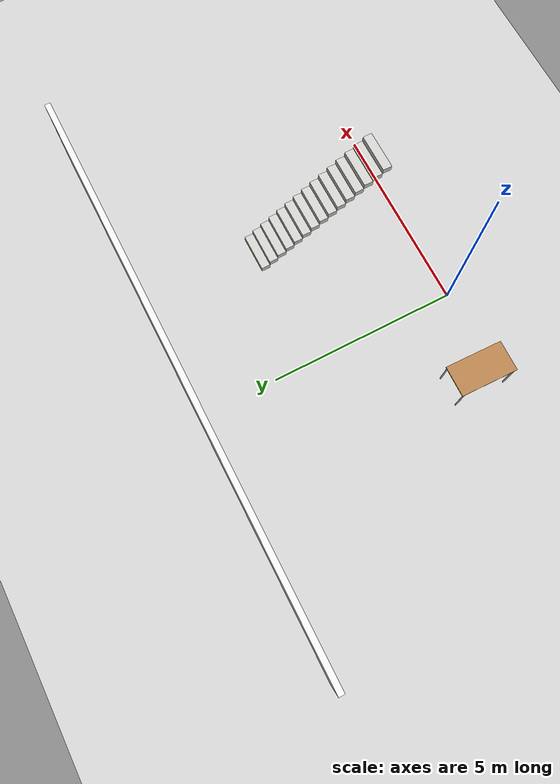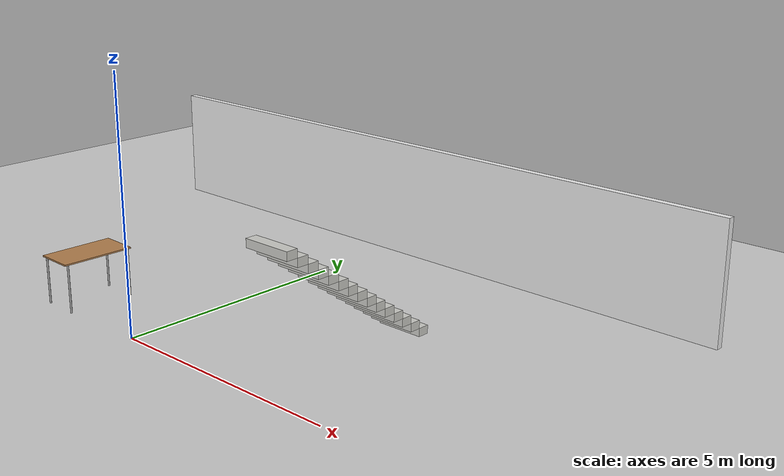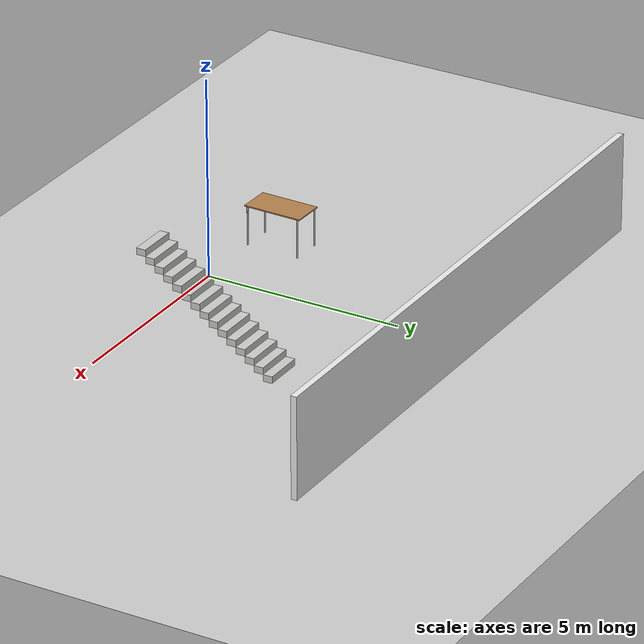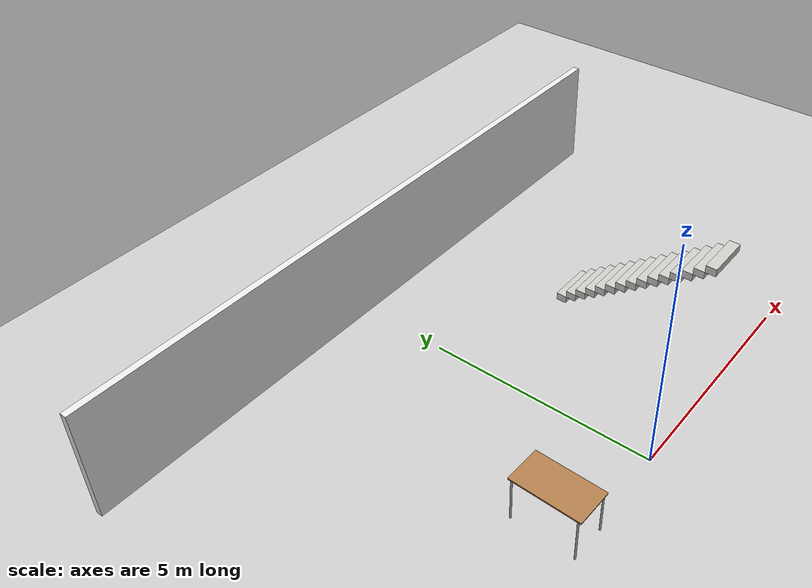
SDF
<sdf version="1.6">
 <world name="default">
  <model name="ground_plane">
   <static>1</static>
   <link name="link">
    <collision name="collision">
     <geometry><plane><normal>0 0 1</normal><size>100 100</size></plane></geometry>
     <surface>
      <contact><collide_bitmask>65535</collide_bitmask></contact>
      <friction><ode><mu>100</mu><mu2>50</mu2></ode></friction>
     </surface>
    </collision>
    <visual name="visual">
     <cast_shadows>0</cast_shadows>
     <geometry><plane><normal>0 0 1</normal><size>100 100</size></plane></geometry>
     <material>
      <script><uri>file://media/materials/scripts/gazebo.material</uri><name>Gazebo/Grey</name></script>
     </material>
    </visual>
   </link>
  </model>
  <model name="table_0">
   <static>1</static>
   <link name="link">
    <collision name="surface">
     <pose>0 0 1 0 -0 0</pose>
     <geometry><box><size>1.5 0.8 0.03</size></box></geometry>
     <surface><friction><ode><mu>0.6</mu><mu2>0.6</mu2></ode></friction></surface>
    </collision>
    <visual name="visual1">
     <pose>0 0 1 0 -0 0</pose>
     <geometry><box><size>1.5 0.8 0.03</size></box></geometry>
     <material>
      <script><uri>file://media/materials/scripts/gazebo.material</uri><name>Gazebo/Wood</name></script>
     </material>
    </visual>
    <collision name="front_left_leg">
     <pose>0.68 0.38 0.5 0 -0 0</pose>
     <geometry><cylinder><radius>0.02</radius><length>1</length></cylinder></geometry>
    </collision>
    <visual name="front_left_leg">
     <pose>0.68 0.38 0.5 0 -0 0</pose>
     <geometry><cylinder><radius>0.02</radius><length>1</length></cylinder></geometry>
     <material>
      <script><uri>file://media/materials/scripts/gazebo.material</uri><name>Gazebo/Grey</name></script>
     </material>
    </visual>
    <collision name="front_right_leg">
     <pose>0.68 -0.38 0.5 0 -0 0</pose>
     <geometry><cylinder><radius>0.02</radius><length>1</length></cylinder></geometry>
    </collision>
    <visual name="front_right_leg">
     <pose>0.68 -0.38 0.5 0 -0 0</pose>
     <geometry><cylinder><radius>0.02</radius><length>1</length></cylinder></geometry>
     <material>
      <script><uri>file://media/materials/scripts/gazebo.material</uri><name>Gazebo/Grey</name></script>
     </material>
    </visual>
    <collision name="back_right_leg">
     <pose>-0.68 -0.38 0.5 0 -0 0</pose>
     <geometry><cylinder><radius>0.02</radius><length>1</length></cylinder></geometry>
    </collision>
    <visual name="back_right_leg">
     <pose>-0.68 -0.38 0.5 0 -0 0</pose>
     <geometry><cylinder><radius>0.02</radius><length>1</length></cylinder></geometry>
     <material>
      <script><uri>file://media/materials/scripts/gazebo.material</uri><name>Gazebo/Grey</name></script>
     </material>
    </visual>
    <collision name="back_left_leg">
     <pose>-0.68 0.38 0.5 0 -0 0</pose>
     <geometry><cylinder><radius>0.02</radius><length>1</length></cylinder></geometry>
    </collision>
    <visual name="back_left_leg">
     <pose>-0.68 0.38 0.5 0 -0 0</pose>
     <geometry><cylinder><radius>0.02</radius><length>1</length></cylinder></geometry>
     <material>
      <script><uri>file://media/materials/scripts/gazebo.material</uri><name>Gazebo/Grey</name></script>
     </material>
    </visual>
   </link>
   <pose>-2.23339 0.613109 0 0 0 -1.59289</pose>
  </model>
  <model name="my_building_0">
   <link name="Stairs_0">
    <visual name="Stairs_0_Visual_0">
     <pose>1.21745 4.206 0.083333 0 -0 0</pose>
     <geometry><box><size>1 0.233333 0.166667</size></box></geometry>
     <material>
      <script><uri>file://media/materials/scripts/gazebo.material</uri><name>Gazebo/CeilingTiled</name></script>
      <ambient>1 1 1 1</ambient>
      <diffuse>1 1 1 1</diffuse>
      <specular>0 0 0 1</specular>
      <emissive>0 0 0 1</emissive>
      <shader type="pixel"/>
     </material>
     <meta><layer>0</layer></meta>
    </visual>
    <visual name="Stairs_0_Visual_1">
     <pose>1.21745 3.97267 0.25 0 -0 0</pose>
     <geometry><box><size>1 0.233333 0.166667</size></box></geometry>
     <material>
      <script><uri>file://media/materials/scripts/gazebo.material</uri><name>Gazebo/CeilingTiled</name></script>
      <ambient>1 1 1 1</ambient>
      <diffuse>1 1 1 1</diffuse>
      <specular>0 0 0 1</specular>
      <emissive>0 0 0 1</emissive>
      <shader type="pixel"/>
     </material>
     <meta><layer>0</layer></meta>
    </visual>
    <visual name="Stairs_0_Visual_2">
     <pose>1.21745 3.73934 0.416667 0 -0 0</pose>
     <geometry><box><size>1 0.233333 0.166667</size></box></geometry>
     <material>
      <script><uri>file://media/materials/scripts/gazebo.material</uri><name>Gazebo/CeilingTiled</name></script>
      <ambient>1 1 1 1</ambient>
      <diffuse>1 1 1 1</diffuse>
      <specular>0 0 0 1</specular>
      <emissive>0 0 0 1</emissive>
      <shader type="pixel"/>
     </material>
     <meta><layer>0</layer></meta>
    </visual>
    <visual name="Stairs_0_Visual_3">
     <pose>1.21745 3.506 0.583333 0 -0 0</pose>
     <geometry><box><size>1 0.233333 0.166667</size></box></geometry>
     <material>
      <script><uri>file://media/materials/scripts/gazebo.material</uri><name>Gazebo/CeilingTiled</name></script>
      <ambient>1 1 1 1</ambient>
      <diffuse>1 1 1 1</diffuse>
      <specular>0 0 0 1</specular>
      <emissive>0 0 0 1</emissive>
      <shader type="pixel"/>
     </material>
     <meta><layer>0</layer></meta>
    </visual>
    <visual name="Stairs_0_Visual_4">
     <pose>1.21745 3.27267 0.75 0 -0 0</pose>
     <geometry><box><size>1 0.233333 0.166667</size></box></geometry>
     <material>
      <script><uri>file://media/materials/scripts/gazebo.material</uri><name>Gazebo/CeilingTiled</name></script>
      <ambient>1 1 1 1</ambient>
      <diffuse>1 1 1 1</diffuse>
      <specular>0 0 0 1</specular>
      <emissive>0 0 0 1</emissive>
      <shader type="pixel"/>
     </material>
     <meta><layer>0</layer></meta>
    </visual>
    <visual name="Stairs_0_Visual_5">
     <pose>1.21745 3.03934 0.916667 0 -0 0</pose>
     <geometry><box><size>1 0.233333 0.166667</size></box></geometry>
     <material>
      <script><uri>file://media/materials/scripts/gazebo.material</uri><name>Gazebo/CeilingTiled</name></script>
      <ambient>1 1 1 1</ambient>
      <diffuse>1 1 1 1</diffuse>
      <specular>0 0 0 1</specular>
      <emissive>0 0 0 1</emissive>
      <shader type="pixel"/>
     </material>
     <meta><layer>0</layer></meta>
    </visual>
    <visual name="Stairs_0_Visual_6">
     <pose>1.21745 2.806 1.08333 0 -0 0</pose>
     <geometry><box><size>1 0.233333 0.166667</size></box></geometry>
     <material>
      <script><uri>file://media/materials/scripts/gazebo.material</uri><name>Gazebo/CeilingTiled</name></script>
      <ambient>1 1 1 1</ambient>
      <diffuse>1 1 1 1</diffuse>
      <specular>0 0 0 1</specular>
      <emissive>0 0 0 1</emissive>
      <shader type="pixel"/>
     </material>
     <meta><layer>0</layer></meta>
    </visual>
    <visual name="Stairs_0_Visual_7">
     <pose>1.21745 2.57267 1.25 0 -0 0</pose>
     <geometry><box><size>1 0.233333 0.166667</size></box></geometry>
     <material>
      <script><uri>file://media/materials/scripts/gazebo.material</uri><name>Gazebo/CeilingTiled</name></script>
      <ambient>1 1 1 1</ambient>
      <diffuse>1 1 1 1</diffuse>
      <specular>0 0 0 1</specular>
      <emissive>0 0 0 1</emissive>
      <shader type="pixel"/>
     </material>
     <meta><layer>0</layer></meta>
    </visual>
    <visual name="Stairs_0_Visual_8">
     <pose>1.21745 2.33934 1.41667 0 -0 0</pose>
     <geometry><box><size>1 0.233333 0.166667</size></box></geometry>
     <material>
      <script><uri>file://media/materials/scripts/gazebo.material</uri><name>Gazebo/CeilingTiled</name></script>
      <ambient>1 1 1 1</ambient>
      <diffuse>1 1 1 1</diffuse>
      <specular>0 0 0 1</specular>
      <emissive>0 0 0 1</emissive>
      <shader type="pixel"/>
     </material>
     <meta><layer>0</layer></meta>
    </visual>
    <visual name="Stairs_0_Visual_9">
     <pose>1.21745 2.106 1.58333 0 -0 0</pose>
     <geometry><box><size>1 0.233333 0.166667</size></box></geometry>
     <material>
      <script><uri>file://media/materials/scripts/gazebo.material</uri><name>Gazebo/CeilingTiled</name></script>
      <ambient>1 1 1 1</ambient>
      <diffuse>1 1 1 1</diffuse>
      <specular>0 0 0 1</specular>
      <emissive>0 0 0 1</emissive>
      <shader type="pixel"/>
     </material>
     <meta><layer>0</layer></meta>
    </visual>
    <visual name="Stairs_0_Visual_10">
     <pose>1.21745 1.87267 1.75 0 -0 0</pose>
     <geometry><box><size>1 0.233333 0.166667</size></box></geometry>
     <material>
      <script><uri>file://media/materials/scripts/gazebo.material</uri><name>Gazebo/CeilingTiled</name></script>
      <ambient>1 1 1 1</ambient>
      <diffuse>1 1 1 1</diffuse>
      <specular>0 0 0 1</specular>
      <emissive>0 0 0 1</emissive>
      <shader type="pixel"/>
     </material>
     <meta><layer>0</layer></meta>
    </visual>
    <visual name="Stairs_0_Visual_11">
     <pose>1.21745 1.63934 1.91667 0 -0 0</pose>
     <geometry><box><size>1 0.233333 0.166667</size></box></geometry>
     <material>
      <script><uri>file://media/materials/scripts/gazebo.material</uri><name>Gazebo/CeilingTiled</name></script>
      <ambient>1 1 1 1</ambient>
      <diffuse>1 1 1 1</diffuse>
      <specular>0 0 0 1</specular>
      <emissive>0 0 0 1</emissive>
      <shader type="pixel"/>
     </material>
     <meta><layer>0</layer></meta>
    </visual>
    <visual name="Stairs_0_Visual_12">
     <pose>1.21745 1.406 2.08333 0 -0 0</pose>
     <geometry><box><size>1 0.233333 0.166667</size></box></geometry>
     <material>
      <script><uri>file://media/materials/scripts/gazebo.material</uri><name>Gazebo/CeilingTiled</name></script>
      <ambient>1 1 1 1</ambient>
      <diffuse>1 1 1 1</diffuse>
      <specular>0 0 0 1</specular>
      <emissive>0 0 0 1</emissive>
      <shader type="pixel"/>
     </material>
     <meta><layer>0</layer></meta>
    </visual>
    <visual name="Stairs_0_Visual_13">
     <pose>1.21745 1.17267 2.25 0 -0 0</pose>
     <geometry><box><size>1 0.233333 0.166667</size></box></geometry>
     <material>
      <script><uri>file://media/materials/scripts/gazebo.material</uri><name>Gazebo/CeilingTiled</name></script>
      <ambient>1 1 1 1</ambient>
      <diffuse>1 1 1 1</diffuse>
      <specular>0 0 0 1</specular>
      <emissive>0 0 0 1</emissive>
      <shader type="pixel"/>
     </material>
     <meta><layer>0</layer></meta>
    </visual>
    <visual name="Stairs_0_Visual_14">
     <pose>1.21745 0.939336 2.41667 0 -0 0</pose>
     <geometry><box><size>1 0.233333 0.166667</size></box></geometry>
     <material>
      <script><uri>file://media/materials/scripts/gazebo.material</uri><name>Gazebo/CeilingTiled</name></script>
      <ambient>1 1 1 1</ambient>
      <diffuse>1 1 1 1</diffuse>
      <specular>0 0 0 1</specular>
      <emissive>0 0 0 1</emissive>
      <shader type="pixel"/>
     </material>
     <meta><layer>0</layer></meta>
    </visual>
    <collision name="Stairs_0_Collision_0">
     <pose>1.21745 4.206 0.083333 0 -0 0</pose>
     <geometry><box><size>1 0.233333 0.166667</size></box></geometry>
     <surface>
      <friction>
       <ode><mu>1</mu><mu2>1</mu2><fdir1>0 0 0</fdir1><slip1>0</slip1><slip2>0</slip2></ode>
       <torsional>
        <coefficient>1</coefficient>
        <patch_radius>0</patch_radius>
        <surface_radius>0</surface_radius>
        <use_patch_radius>1</use_patch_radius>
        <ode><slip>0</slip></ode>
       </torsional>
      </friction>
      <bounce><restitution_coefficient>0</restitution_coefficient><threshold>1e+06</threshold></bounce>
      <contact>
       <collide_without_contact>0</collide_without_contact>
       <collide_without_contact_bitmask>1</collide_without_contact_bitmask>
       <collide_bitmask>1</collide_bitmask>
       <ode>
        <soft_cfm>0</soft_cfm>
        <soft_erp>0.2</soft_erp>
        <kp>1e+13</kp>
        <kd>1</kd>
        <max_vel>0.01</max_vel>
        <min_depth>0</min_depth>
       </ode>
       <bullet>
        <split_impulse>1</split_impulse>
        <split_impulse_penetration_threshold>-0.01</split_impulse_penetration_threshold>
        <soft_cfm>0</soft_cfm>
        <soft_erp>0.2</soft_erp>
        <kp>1e+13</kp>
        <kd>1</kd>
       </bullet>
      </contact>
     </surface>
    </collision>
    <collision name="Stairs_0_Collision_3">
     <pose>1.21745 3.506 0.583333 0 -0 0</pose>
     <geometry><box><size>1 0.233333 0.166667</size></box></geometry>
     <surface>
      <friction>
       <ode><mu>1</mu><mu2>1</mu2><fdir1>0 0 0</fdir1><slip1>0</slip1><slip2>0</slip2></ode>
       <torsional>
        <coefficient>1</coefficient>
        <patch_radius>0</patch_radius>
        <surface_radius>0</surface_radius>
        <use_patch_radius>1</use_patch_radius>
        <ode><slip>0</slip></ode>
       </torsional>
      </friction>
      <bounce><restitution_coefficient>0</restitution_coefficient><threshold>1e+06</threshold></bounce>
      <contact>
       <collide_without_contact>0</collide_without_contact>
       <collide_without_contact_bitmask>1</collide_without_contact_bitmask>
       <collide_bitmask>1</collide_bitmask>
       <ode>
        <soft_cfm>0</soft_cfm>
        <soft_erp>0.2</soft_erp>
        <kp>1e+13</kp>
        <kd>1</kd>
        <max_vel>0.01</max_vel>
        <min_depth>0</min_depth>
       </ode>
       <bullet>
        <split_impulse>1</split_impulse>
        <split_impulse_penetration_threshold>-0.01</split_impulse_penetration_threshold>
        <soft_cfm>0</soft_cfm>
        <soft_erp>0.2</soft_erp>
        <kp>1e+13</kp>
        <kd>1</kd>
       </bullet>
      </contact>
     </surface>
    </collision>
    <collision name="Stairs_0_Collision_1">
     <pose>1.21745 3.97267 0.25 0 -0 0</pose>
     <geometry><box><size>1 0.233333 0.166667</size></box></geometry>
     <surface>
      <friction>
       <ode><mu>1</mu><mu2>1</mu2><fdir1>0 0 0</fdir1><slip1>0</slip1><slip2>0</slip2></ode>
       <torsional>
        <coefficient>1</coefficient>
        <patch_radius>0</patch_radius>
        <surface_radius>0</surface_radius>
        <use_patch_radius>1</use_patch_radius>
        <ode><slip>0</slip></ode>
       </torsional>
      </friction>
      <bounce><restitution_coefficient>0</restitution_coefficient><threshold>1e+06</threshold></bounce>
      <contact>
       <collide_without_contact>0</collide_without_contact>
       <collide_without_contact_bitmask>1</collide_without_contact_bitmask>
       <collide_bitmask>1</collide_bitmask>
       <ode>
        <soft_cfm>0</soft_cfm>
        <soft_erp>0.2</soft_erp>
        <kp>1e+13</kp>
        <kd>1</kd>
        <max_vel>0.01</max_vel>
        <min_depth>0</min_depth>
       </ode>
       <bullet>
        <split_impulse>1</split_impulse>
        <split_impulse_penetration_threshold>-0.01</split_impulse_penetration_threshold>
        <soft_cfm>0</soft_cfm>
        <soft_erp>0.2</soft_erp>
        <kp>1e+13</kp>
        <kd>1</kd>
       </bullet>
      </contact>
     </surface>
    </collision>
    <collision name="Stairs_0_Collision_4">
     <pose>1.21745 3.27267 0.75 0 -0 0</pose>
     <geometry><box><size>1 0.233333 0.166667</size></box></geometry>
     <surface>
      <friction>
       <ode><mu>1</mu><mu2>1</mu2><fdir1>0 0 0</fdir1><slip1>0</slip1><slip2>0</slip2></ode>
       <torsional>
        <coefficient>1</coefficient>
        <patch_radius>0</patch_radius>
        <surface_radius>0</surface_radius>
        <use_patch_radius>1</use_patch_radius>
        <ode><slip>0</slip></ode>
       </torsional>
      </friction>
      <bounce><restitution_coefficient>0</restitution_coefficient><threshold>1e+06</threshold></bounce>
      <contact>
       <collide_without_contact>0</collide_without_contact>
       <collide_without_contact_bitmask>1</collide_without_contact_bitmask>
       <collide_bitmask>1</collide_bitmask>
       <ode>
        <soft_cfm>0</soft_cfm>
        <soft_erp>0.2</soft_erp>
        <kp>1e+13</kp>
        <kd>1</kd>
        <max_vel>0.01</max_vel>
        <min_depth>0</min_depth>
       </ode>
       <bullet>
        <split_impulse>1</split_impulse>
        <split_impulse_penetration_threshold>-0.01</split_impulse_penetration_threshold>
        <soft_cfm>0</soft_cfm>
        <soft_erp>0.2</soft_erp>
        <kp>1e+13</kp>
        <kd>1</kd>
       </bullet>
      </contact>
     </surface>
    </collision>
    <collision name="Stairs_0_Collision_2">
     <pose>1.21745 3.73934 0.416667 0 -0 0</pose>
     <geometry><box><size>1 0.233333 0.166667</size></box></geometry>
     <surface>
      <friction>
       <ode><mu>1</mu><mu2>1</mu2><fdir1>0 0 0</fdir1><slip1>0</slip1><slip2>0</slip2></ode>
       <torsional>
        <coefficient>1</coefficient>
        <patch_radius>0</patch_radius>
        <surface_radius>0</surface_radius>
        <use_patch_radius>1</use_patch_radius>
        <ode><slip>0</slip></ode>
       </torsional>
      </friction>
      <bounce><restitution_coefficient>0</restitution_coefficient><threshold>1e+06</threshold></bounce>
      <contact>
       <collide_without_contact>0</collide_without_contact>
       <collide_without_contact_bitmask>1</collide_without_contact_bitmask>
       <collide_bitmask>1</collide_bitmask>
       <ode>
        <soft_cfm>0</soft_cfm>
        <soft_erp>0.2</soft_erp>
        <kp>1e+13</kp>
        <kd>1</kd>
        <max_vel>0.01</max_vel>
        <min_depth>0</min_depth>
       </ode>
       <bullet>
        <split_impulse>1</split_impulse>
        <split_impulse_penetration_threshold>-0.01</split_impulse_penetration_threshold>
        <soft_cfm>0</soft_cfm>
        <soft_erp>0.2</soft_erp>
        <kp>1e+13</kp>
        <kd>1</kd>
       </bullet>
      </contact>
     </surface>
    </collision>
    <collision name="Stairs_0_Collision_5">
     <pose>1.21745 3.03934 0.916667 0 -0 0</pose>
     <geometry><box><size>1 0.233333 0.166667</size></box></geometry>
     <surface>
      <friction>
       <ode><mu>1</mu><mu2>1</mu2><fdir1>0 0 0</fdir1><slip1>0</slip1><slip2>0</slip2></ode>
       <torsional>
        <coefficient>1</coefficient>
        <patch_radius>0</patch_radius>
        <surface_radius>0</surface_radius>
        <use_patch_radius>1</use_patch_radius>
        <ode><slip>0</slip></ode>
       </torsional>
      </friction>
      <bounce><restitution_coefficient>0</restitution_coefficient><threshold>1e+06</threshold></bounce>
      <contact>
       <collide_without_contact>0</collide_without_contact>
       <collide_without_contact_bitmask>1</collide_without_contact_bitmask>
       <collide_bitmask>1</collide_bitmask>
       <ode>
        <soft_cfm>0</soft_cfm>
        <soft_erp>0.2</soft_erp>
        <kp>1e+13</kp>
        <kd>1</kd>
        <max_vel>0.01</max_vel>
        <min_depth>0</min_depth>
       </ode>
       <bullet>
        <split_impulse>1</split_impulse>
        <split_impulse_penetration_threshold>-0.01</split_impulse_penetration_threshold>
        <soft_cfm>0</soft_cfm>
        <soft_erp>0.2</soft_erp>
        <kp>1e+13</kp>
        <kd>1</kd>
       </bullet>
      </contact>
     </surface>
    </collision>
    <collision name="Stairs_0_Collision_6">
     <pose>1.21745 2.806 1.08333 0 -0 0</pose>
     <geometry><box><size>1 0.233333 0.166667</size></box></geometry>
     <surface>
      <friction>
       <ode><mu>1</mu><mu2>1</mu2><fdir1>0 0 0</fdir1><slip1>0</slip1><slip2>0</slip2></ode>
       <torsional>
        <coefficient>1</coefficient>
        <patch_radius>0</patch_radius>
        <surface_radius>0</surface_radius>
        <use_patch_radius>1</use_patch_radius>
        <ode><slip>0</slip></ode>
       </torsional>
      </friction>
      <bounce><restitution_coefficient>0</restitution_coefficient><threshold>1e+06</threshold></bounce>
      <contact>
       <collide_without_contact>0</collide_without_contact>
       <collide_without_contact_bitmask>1</collide_without_contact_bitmask>
       <collide_bitmask>1</collide_bitmask>
       <ode>
        <soft_cfm>0</soft_cfm>
        <soft_erp>0.2</soft_erp>
        <kp>1e+13</kp>
        <kd>1</kd>
        <max_vel>0.01</max_vel>
        <min_depth>0</min_depth>
       </ode>
       <bullet>
        <split_impulse>1</split_impulse>
        <split_impulse_penetration_threshold>-0.01</split_impulse_penetration_threshold>
        <soft_cfm>0</soft_cfm>
        <soft_erp>0.2</soft_erp>
        <kp>1e+13</kp>
        <kd>1</kd>
       </bullet>
      </contact>
     </surface>
    </collision>
    <collision name="Stairs_0_Collision_7">
     <pose>1.21745 2.57267 1.25 0 -0 0</pose>
     <geometry><box><size>1 0.233333 0.166667</size></box></geometry>
     <surface>
      <friction>
       <ode><mu>1</mu><mu2>1</mu2><fdir1>0 0 0</fdir1><slip1>0</slip1><slip2>0</slip2></ode>
       <torsional>
        <coefficient>1</coefficient>
        <patch_radius>0</patch_radius>
        <surface_radius>0</surface_radius>
        <use_patch_radius>1</use_patch_radius>
        <ode><slip>0</slip></ode>
       </torsional>
      </friction>
      <bounce><restitution_coefficient>0</restitution_coefficient><threshold>1e+06</threshold></bounce>
      <contact>
       <collide_without_contact>0</collide_without_contact>
       <collide_without_contact_bitmask>1</collide_without_contact_bitmask>
       <collide_bitmask>1</collide_bitmask>
       <ode>
        <soft_cfm>0</soft_cfm>
        <soft_erp>0.2</soft_erp>
        <kp>1e+13</kp>
        <kd>1</kd>
        <max_vel>0.01</max_vel>
        <min_depth>0</min_depth>
       </ode>
       <bullet>
        <split_impulse>1</split_impulse>
        <split_impulse_penetration_threshold>-0.01</split_impulse_penetration_threshold>
        <soft_cfm>0</soft_cfm>
        <soft_erp>0.2</soft_erp>
        <kp>1e+13</kp>
        <kd>1</kd>
       </bullet>
      </contact>
     </surface>
    </collision>
    <collision name="Stairs_0_Collision_8">
     <pose>1.21745 2.33934 1.41667 0 -0 0</pose>
     <geometry><box><size>1 0.233333 0.166667</size></box></geometry>
     <surface>
      <friction>
       <ode><mu>1</mu><mu2>1</mu2><fdir1>0 0 0</fdir1><slip1>0</slip1><slip2>0</slip2></ode>
       <torsional>
        <coefficient>1</coefficient>
        <patch_radius>0</patch_radius>
        <surface_radius>0</surface_radius>
        <use_patch_radius>1</use_patch_radius>
        <ode><slip>0</slip></ode>
       </torsional>
      </friction>
      <bounce><restitution_coefficient>0</restitution_coefficient><threshold>1e+06</threshold></bounce>
      <contact>
       <collide_without_contact>0</collide_without_contact>
       <collide_without_contact_bitmask>1</collide_without_contact_bitmask>
       <collide_bitmask>1</collide_bitmask>
       <ode>
        <soft_cfm>0</soft_cfm>
        <soft_erp>0.2</soft_erp>
        <kp>1e+13</kp>
        <kd>1</kd>
        <max_vel>0.01</max_vel>
        <min_depth>0</min_depth>
       </ode>
       <bullet>
        <split_impulse>1</split_impulse>
        <split_impulse_penetration_threshold>-0.01</split_impulse_penetration_threshold>
        <soft_cfm>0</soft_cfm>
        <soft_erp>0.2</soft_erp>
        <kp>1e+13</kp>
        <kd>1</kd>
       </bullet>
      </contact>
     </surface>
    </collision>
    <collision name="Stairs_0_Collision_9">
     <pose>1.21745 2.106 1.58333 0 -0 0</pose>
     <geometry><box><size>1 0.233333 0.166667</size></box></geometry>
     <surface>
      <friction>
       <ode><mu>1</mu><mu2>1</mu2><fdir1>0 0 0</fdir1><slip1>0</slip1><slip2>0</slip2></ode>
       <torsional>
        <coefficient>1</coefficient>
        <patch_radius>0</patch_radius>
        <surface_radius>0</surface_radius>
        <use_patch_radius>1</use_patch_radius>
        <ode><slip>0</slip></ode>
       </torsional>
      </friction>
      <bounce><restitution_coefficient>0</restitution_coefficient><threshold>1e+06</threshold></bounce>
      <contact>
       <collide_without_contact>0</collide_without_contact>
       <collide_without_contact_bitmask>1</collide_without_contact_bitmask>
       <collide_bitmask>1</collide_bitmask>
       <ode>
        <soft_cfm>0</soft_cfm>
        <soft_erp>0.2</soft_erp>
        <kp>1e+13</kp>
        <kd>1</kd>
        <max_vel>0.01</max_vel>
        <min_depth>0</min_depth>
       </ode>
       <bullet>
        <split_impulse>1</split_impulse>
        <split_impulse_penetration_threshold>-0.01</split_impulse_penetration_threshold>
        <soft_cfm>0</soft_cfm>
        <soft_erp>0.2</soft_erp>
        <kp>1e+13</kp>
        <kd>1</kd>
       </bullet>
      </contact>
     </surface>
    </collision>
    <collision name="Stairs_0_Collision_10">
     <pose>1.21745 1.87267 1.75 0 -0 0</pose>
     <geometry><box><size>1 0.233333 0.166667</size></box></geometry>
     <surface>
      <friction>
       <ode><mu>1</mu><mu2>1</mu2><fdir1>0 0 0</fdir1><slip1>0</slip1><slip2>0</slip2></ode>
       <torsional>
        <coefficient>1</coefficient>
        <patch_radius>0</patch_radius>
        <surface_radius>0</surface_radius>
        <use_patch_radius>1</use_patch_radius>
        <ode><slip>0</slip></ode>
       </torsional>
      </friction>
      <bounce><restitution_coefficient>0</restitution_coefficient><threshold>1e+06</threshold></bounce>
      <contact>
       <collide_without_contact>0</collide_without_contact>
       <collide_without_contact_bitmask>1</collide_without_contact_bitmask>
       <collide_bitmask>1</collide_bitmask>
       <ode>
        <soft_cfm>0</soft_cfm>
        <soft_erp>0.2</soft_erp>
        <kp>1e+13</kp>
        <kd>1</kd>
        <max_vel>0.01</max_vel>
        <min_depth>0</min_depth>
       </ode>
       <bullet>
        <split_impulse>1</split_impulse>
        <split_impulse_penetration_threshold>-0.01</split_impulse_penetration_threshold>
        <soft_cfm>0</soft_cfm>
        <soft_erp>0.2</soft_erp>
        <kp>1e+13</kp>
        <kd>1</kd>
       </bullet>
      </contact>
     </surface>
    </collision>
    <collision name="Stairs_0_Collision_11">
     <pose>1.21745 1.63934 1.91667 0 -0 0</pose>
     <geometry><box><size>1 0.233333 0.166667</size></box></geometry>
     <surface>
      <friction>
       <ode><mu>1</mu><mu2>1</mu2><fdir1>0 0 0</fdir1><slip1>0</slip1><slip2>0</slip2></ode>
       <torsional>
        <coefficient>1</coefficient>
        <patch_radius>0</patch_radius>
        <surface_radius>0</surface_radius>
        <use_patch_radius>1</use_patch_radius>
        <ode><slip>0</slip></ode>
       </torsional>
      </friction>
      <bounce><restitution_coefficient>0</restitution_coefficient><threshold>1e+06</threshold></bounce>
      <contact>
       <collide_without_contact>0</collide_without_contact>
       <collide_without_contact_bitmask>1</collide_without_contact_bitmask>
       <collide_bitmask>1</collide_bitmask>
       <ode>
        <soft_cfm>0</soft_cfm>
        <soft_erp>0.2</soft_erp>
        <kp>1e+13</kp>
        <kd>1</kd>
        <max_vel>0.01</max_vel>
        <min_depth>0</min_depth>
       </ode>
       <bullet>
        <split_impulse>1</split_impulse>
        <split_impulse_penetration_threshold>-0.01</split_impulse_penetration_threshold>
        <soft_cfm>0</soft_cfm>
        <soft_erp>0.2</soft_erp>
        <kp>1e+13</kp>
        <kd>1</kd>
       </bullet>
      </contact>
     </surface>
    </collision>
    <collision name="Stairs_0_Collision_13">
     <pose>1.21745 1.17267 2.25 0 -0 0</pose>
     <geometry><box><size>1 0.233333 0.166667</size></box></geometry>
     <surface>
      <friction>
       <ode><mu>1</mu><mu2>1</mu2><fdir1>0 0 0</fdir1><slip1>0</slip1><slip2>0</slip2></ode>
       <torsional>
        <coefficient>1</coefficient>
        <patch_radius>0</patch_radius>
        <surface_radius>0</surface_radius>
        <use_patch_radius>1</use_patch_radius>
        <ode><slip>0</slip></ode>
       </torsional>
      </friction>
      <bounce><restitution_coefficient>0</restitution_coefficient><threshold>1e+06</threshold></bounce>
      <contact>
       <collide_without_contact>0</collide_without_contact>
       <collide_without_contact_bitmask>1</collide_without_contact_bitmask>
       <collide_bitmask>1</collide_bitmask>
       <ode>
        <soft_cfm>0</soft_cfm>
        <soft_erp>0.2</soft_erp>
        <kp>1e+13</kp>
        <kd>1</kd>
        <max_vel>0.01</max_vel>
        <min_depth>0</min_depth>
       </ode>
       <bullet>
        <split_impulse>1</split_impulse>
        <split_impulse_penetration_threshold>-0.01</split_impulse_penetration_threshold>
        <soft_cfm>0</soft_cfm>
        <soft_erp>0.2</soft_erp>
        <kp>1e+13</kp>
        <kd>1</kd>
       </bullet>
      </contact>
     </surface>
    </collision>
    <collision name="Stairs_0_Collision_12">
     <pose>1.21745 1.406 2.08333 0 -0 0</pose>
     <geometry><box><size>1 0.233333 0.166667</size></box></geometry>
     <surface>
      <friction>
       <ode><mu>1</mu><mu2>1</mu2><fdir1>0 0 0</fdir1><slip1>0</slip1><slip2>0</slip2></ode>
       <torsional>
        <coefficient>1</coefficient>
        <patch_radius>0</patch_radius>
        <surface_radius>0</surface_radius>
        <use_patch_radius>1</use_patch_radius>
        <ode><slip>0</slip></ode>
       </torsional>
      </friction>
      <bounce><restitution_coefficient>0</restitution_coefficient><threshold>1e+06</threshold></bounce>
      <contact>
       <collide_without_contact>0</collide_without_contact>
       <collide_without_contact_bitmask>1</collide_without_contact_bitmask>
       <collide_bitmask>1</collide_bitmask>
       <ode>
        <soft_cfm>0</soft_cfm>
        <soft_erp>0.2</soft_erp>
        <kp>1e+13</kp>
        <kd>1</kd>
        <max_vel>0.01</max_vel>
        <min_depth>0</min_depth>
       </ode>
       <bullet>
        <split_impulse>1</split_impulse>
        <split_impulse_penetration_threshold>-0.01</split_impulse_penetration_threshold>
        <soft_cfm>0</soft_cfm>
        <soft_erp>0.2</soft_erp>
        <kp>1e+13</kp>
        <kd>1</kd>
       </bullet>
      </contact>
     </surface>
    </collision>
    <collision name="Stairs_0_Collision_14">
     <pose>1.21745 0.939336 2.41667 0 -0 0</pose>
     <geometry><box><size>1 0.233333 0.166667</size></box></geometry>
     <surface>
      <friction>
       <ode><mu>1</mu><mu2>1</mu2><fdir1>0 0 0</fdir1><slip1>0</slip1><slip2>0</slip2></ode>
       <torsional>
        <coefficient>1</coefficient>
        <patch_radius>0</patch_radius>
        <surface_radius>0</surface_radius>
        <use_patch_radius>1</use_patch_radius>
        <ode><slip>0</slip></ode>
       </torsional>
      </friction>
      <bounce><restitution_coefficient>0</restitution_coefficient><threshold>1e+06</threshold></bounce>
      <contact>
       <collide_without_contact>0</collide_without_contact>
       <collide_without_contact_bitmask>1</collide_without_contact_bitmask>
       <collide_bitmask>1</collide_bitmask>
       <ode>
        <soft_cfm>0</soft_cfm>
        <soft_erp>0.2</soft_erp>
        <kp>1e+13</kp>
        <kd>1</kd>
        <max_vel>0.01</max_vel>
        <min_depth>0</min_depth>
       </ode>
       <bullet>
        <split_impulse>1</split_impulse>
        <split_impulse_penetration_threshold>-0.01</split_impulse_penetration_threshold>
        <soft_cfm>0</soft_cfm>
        <soft_erp>0.2</soft_erp>
        <kp>1e+13</kp>
        <kd>1</kd>
       </bullet>
      </contact>
     </surface>
    </collision>
   </link>
   <link name="Wall_5">
    <pose>-1.48206 7.425 0 0 -0 3.14159</pose>
    <inertial>
     <mass>1</mass>
     <inertia><ixx>1</ixx><ixy>0</ixy><ixz>0</ixz><iyy>1</iyy><iyz>0</iyz><izz>1</izz></inertia>
    </inertial>
    <visual name="Wall_5_Visual">
     <pose>0 0 1.25 0 -0 0</pose>
     <geometry><box><size>15 0.15 2.5</size></box></geometry>
     <material>
      <script><uri>file://media/materials/scripts/gazebo.material</uri><name>Gazebo/White</name></script>
      <ambient>0.922 0.808 0.616 1</ambient>
      <diffuse>1 1 1 1</diffuse>
      <specular>0.2 0.2 0.2 1</specular>
      <emissive>0 0 0 1</emissive>
      <shader type="pixel"><normal_map>__default__</normal_map></shader>
     </material>
     <meta><layer>0</layer></meta>
    </visual>
    <collision name="Wall_5_Collision">
     <pose>0 0 1.25 0 -0 0</pose>
     <geometry><box><size>15 0.15 2.5</size></box></geometry>
     <surface>
      <friction>
       <ode><mu>1</mu><mu2>1</mu2><fdir1>0 0 0</fdir1><slip1>0</slip1><slip2>0</slip2></ode>
       <torsional>
        <coefficient>1</coefficient>
        <patch_radius>0</patch_radius>
        <surface_radius>0</surface_radius>
        <use_patch_radius>1</use_patch_radius>
        <ode><slip>0</slip></ode>
       </torsional>
      </friction>
      <bounce><restitution_coefficient>0</restitution_coefficient><threshold>1e+06</threshold></bounce>
      <contact>
       <collide_without_contact>0</collide_without_contact>
       <collide_without_contact_bitmask>1</collide_without_contact_bitmask>
       <collide_bitmask>1</collide_bitmask>
       <ode>
        <soft_cfm>0</soft_cfm>
        <soft_erp>0.2</soft_erp>
        <kp>1e+13</kp>
        <kd>1</kd>
        <max_vel>0.01</max_vel>
        <min_depth>0</min_depth>
       </ode>
       <bullet>
        <split_impulse>1</split_impulse>
        <split_impulse_penetration_threshold>-0.01</split_impulse_penetration_threshold>
        <soft_cfm>0</soft_cfm>
        <soft_erp>0.2</soft_erp>
        <kp>1e+13</kp>
        <kd>1</kd>
       </bullet>
      </contact>
     </surface>
    </collision>
   </link>
   <static>1</static>
   <pose>2.08113 -0.36477 0 0 -0 0</pose>
  </model>
 </world>
</sdf>
